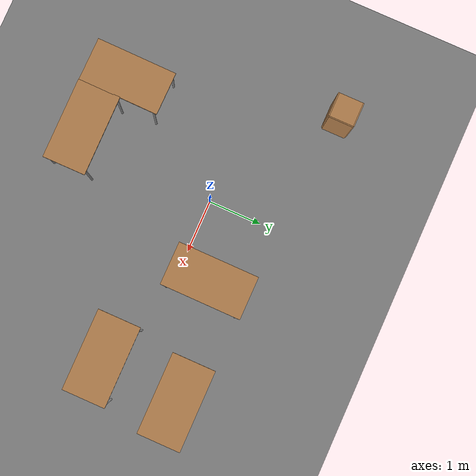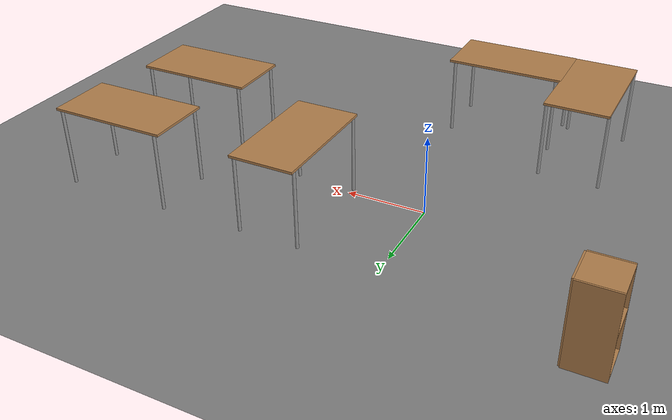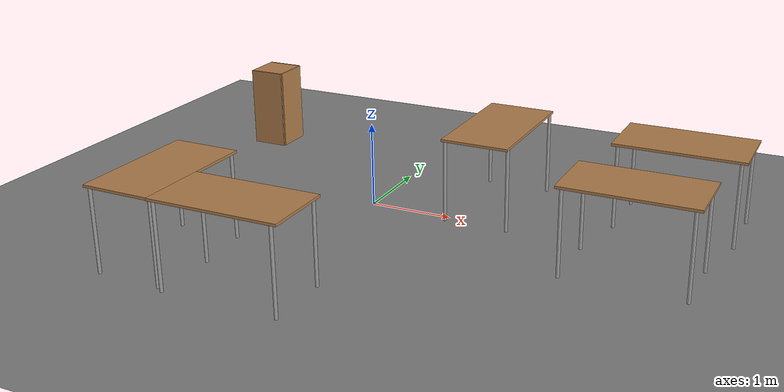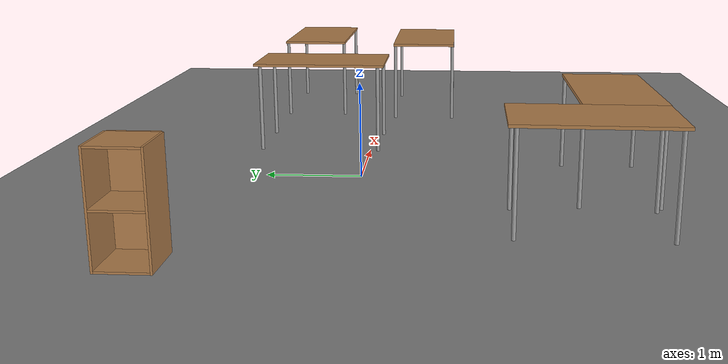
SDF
<sdf version="1.6">
 <world name="default">
  <model name="ground_plane">
   <static>1</static>
   <link name="link">
    <collision name="collision">
     <geometry><plane><normal>0 0 1</normal><size>100 100</size></plane></geometry>
    </collision>
    <visual name="visual">
     <geometry><plane><normal>0 0 1</normal><size>100 100</size></plane></geometry>
     <material>
      <ambient>0.5 0.5 0.5 1</ambient>
      <diffuse>0.5 0.5 0.5 1</diffuse>
      <specular>0.1 0.1 0.1 1</specular>
     </material>
    </visual>
   </link>
  </model>
  <model name="cabinet_2">
   <static>1</static>
   <link name="cabinet_bottom_plate">
    <inertial>
     <pose>0 0 -1 0 -0 0</pose>
     <inertia><ixx>2.05</ixx><ixy>0</ixy><ixz>0</ixz><iyy>2.05</iyy><iyz>0</iyz><izz>2.05</izz></inertia>
     <mass>25</mass>
    </inertial>
    <collision name="cabinet_bottom_plate_geom">
     <pose>0 0 0.01 0 -0 0</pose>
     <geometry><box><size>0.45 0.45 0.02</size></box></geometry>
    </collision>
    <visual name="cabinet_bottom_plate_geom_visual">
     <pose>0 0 0.01 0 -0 0</pose>
     <geometry><box><size>0.45 0.45 0.02</size></box></geometry>
     <material>
      <script><uri>file://media/materials/scripts/gazebo.material</uri><name>Gazebo/Wood</name></script>
     </material>
    </visual>
    <collision name="cabinet_bottom_plate_geom_cabinet_back_plate">
     <pose>0.235 0 0.51 0 -0 0</pose>
     <geometry><box><size>0.02 0.45 1.02</size></box></geometry>
    </collision>
    <visual name="cabinet_bottom_plate_geom_cabinet_back_plate_visual">
     <pose>0.235 0 0.51 0 -0 0</pose>
     <geometry><box><size>0.02 0.45 1.02</size></box></geometry>
     <material>
      <script><uri>file://media/materials/scripts/gazebo.material</uri><name>Gazebo/Wood</name></script>
     </material>
    </visual>
    <collision name="cabinet_bottom_plate_geom_cabinet_left_plate">
     <pose>0 0.235 0.51 0 -0 0</pose>
     <geometry><box><size>0.45 0.02 1.02</size></box></geometry>
    </collision>
    <visual name="cabinet_bottom_plate_geom_cabinet_left_plate_visual">
     <pose>0 0.235 0.51 0 -0 0</pose>
     <geometry><box><size>0.45 0.02 1.02</size></box></geometry>
     <material>
      <script><uri>file://media/materials/scripts/gazebo.material</uri><name>Gazebo/Wood</name></script>
     </material>
    </visual>
    <collision name="cabinet_bottom_plate_geom_cabinet_middle_plate">
     <pose>0 0 0.51 0 -0 0</pose>
     <geometry><box><size>0.45 0.45 0.02</size></box></geometry>
    </collision>
    <visual name="cabinet_bottom_plate_geom_cabinet_middle_plate_visual">
     <pose>0 0 0.51 0 -0 0</pose>
     <geometry><box><size>0.45 0.45 0.02</size></box></geometry>
     <material>
      <script><uri>file://media/materials/scripts/gazebo.material</uri><name>Gazebo/Wood</name></script>
     </material>
    </visual>
    <collision name="cabinet_bottom_plate_geom_cabinet_right_plate">
     <pose>0 -0.235 0.51 0 -0 0</pose>
     <geometry><box><size>0.45 0.02 1.02</size></box></geometry>
    </collision>
    <visual name="cabinet_bottom_plate_geom_cabinet_right_plate_visual">
     <pose>0 -0.235 0.51 0 -0 0</pose>
     <geometry><box><size>0.45 0.02 1.02</size></box></geometry>
     <material>
      <script><uri>file://media/materials/scripts/gazebo.material</uri><name>Gazebo/Wood</name></script>
     </material>
    </visual>
    <collision name="cabinet_bottom_plate_geom_cabinet_top_plate">
     <pose>0 0 1.01 0 -0 0</pose>
     <geometry><box><size>0.45 0.45 0.02</size></box></geometry>
    </collision>
    <visual name="cabinet_bottom_plate_geom_cabinet_top_plate_visual">
     <pose>0 0 1.01 0 -0 0</pose>
     <geometry><box><size>0.45 0.45 0.02</size></box></geometry>
     <material>
      <script><uri>file://media/materials/scripts/gazebo.material</uri><name>Gazebo/Wood</name></script>
     </material>
    </visual>
   </link>
   <pose>-2.33321 1.56229 0 0 -0 0</pose>
  </model>
  <model name="table_1_clone_1">
   <static>1</static>
   <link name="link">
    <collision name="surface">
     <pose>0 0 1 0 -0 0</pose>
     <geometry><box><size>1.5 0.8 0.03</size></box></geometry>
     <surface><friction><ode><mu>0.6</mu><mu2>0.6</mu2></ode></friction></surface>
    </collision>
    <visual name="visual1">
     <pose>0 0 1 0 -0 0</pose>
     <geometry><box><size>1.5 0.8 0.03</size></box></geometry>
     <material>
      <script><uri>file://media/materials/scripts/gazebo.material</uri><name>Gazebo/Wood</name></script>
     </material>
    </visual>
    <collision name="front_left_leg">
     <pose>0.68 0.38 0.5 0 -0 0</pose>
     <geometry><cylinder><radius>0.02</radius><length>1</length></cylinder></geometry>
    </collision>
    <visual name="front_left_leg">
     <pose>0.68 0.38 0.5 0 -0 0</pose>
     <geometry><cylinder><radius>0.02</radius><length>1</length></cylinder></geometry>
     <material>
      <script><uri>file://media/materials/scripts/gazebo.material</uri><name>Gazebo/Grey</name></script>
     </material>
    </visual>
    <collision name="front_right_leg">
     <pose>0.68 -0.38 0.5 0 -0 0</pose>
     <geometry><cylinder><radius>0.02</radius><length>1</length></cylinder></geometry>
    </collision>
    <visual name="front_right_leg">
     <pose>0.68 -0.38 0.5 0 -0 0</pose>
     <geometry><cylinder><radius>0.02</radius><length>1</length></cylinder></geometry>
     <material>
      <script><uri>file://media/materials/scripts/gazebo.material</uri><name>Gazebo/Grey</name></script>
     </material>
    </visual>
    <collision name="back_right_leg">
     <pose>-0.68 -0.38 0.5 0 -0 0</pose>
     <geometry><cylinder><radius>0.02</radius><length>1</length></cylinder></geometry>
    </collision>
    <visual name="back_right_leg">
     <pose>-0.68 -0.38 0.5 0 -0 0</pose>
     <geometry><cylinder><radius>0.02</radius><length>1</length></cylinder></geometry>
     <material>
      <script><uri>file://media/materials/scripts/gazebo.material</uri><name>Gazebo/Grey</name></script>
     </material>
    </visual>
    <collision name="back_left_leg">
     <pose>-0.68 0.38 0.5 0 -0 0</pose>
     <geometry><cylinder><radius>0.02</radius><length>1</length></cylinder></geometry>
    </collision>
    <visual name="back_left_leg">
     <pose>-0.68 0.38 0.5 0 -0 0</pose>
     <geometry><cylinder><radius>0.02</radius><length>1</length></cylinder></geometry>
     <material>
      <script><uri>file://media/materials/scripts/gazebo.material</uri><name>Gazebo/Grey</name></script>
     </material>
    </visual>
   </link>
   <pose>3.32915 -0.557353 0 0 -0 0</pose>
  </model>
  <model name="table_1_clone_2">
   <static>1</static>
   <link name="link">
    <collision name="surface">
     <pose>0 0 1 0 -0 0</pose>
     <geometry><box><size>1.5 0.8 0.03</size></box></geometry>
     <surface><friction><ode><mu>0.6</mu><mu2>0.6</mu2></ode></friction></surface>
    </collision>
    <visual name="visual1">
     <pose>0 0 1 0 -0 0</pose>
     <geometry><box><size>1.5 0.8 0.03</size></box></geometry>
     <material>
      <script><uri>file://media/materials/scripts/gazebo.material</uri><name>Gazebo/Wood</name></script>
     </material>
    </visual>
    <collision name="front_left_leg">
     <pose>0.68 0.38 0.5 0 -0 0</pose>
     <geometry><cylinder><radius>0.02</radius><length>1</length></cylinder></geometry>
    </collision>
    <visual name="front_left_leg">
     <pose>0.68 0.38 0.5 0 -0 0</pose>
     <geometry><cylinder><radius>0.02</radius><length>1</length></cylinder></geometry>
     <material>
      <script><uri>file://media/materials/scripts/gazebo.material</uri><name>Gazebo/Grey</name></script>
     </material>
    </visual>
    <collision name="front_right_leg">
     <pose>0.68 -0.38 0.5 0 -0 0</pose>
     <geometry><cylinder><radius>0.02</radius><length>1</length></cylinder></geometry>
    </collision>
    <visual name="front_right_leg">
     <pose>0.68 -0.38 0.5 0 -0 0</pose>
     <geometry><cylinder><radius>0.02</radius><length>1</length></cylinder></geometry>
     <material>
      <script><uri>file://media/materials/scripts/gazebo.material</uri><name>Gazebo/Grey</name></script>
     </material>
    </visual>
    <collision name="back_right_leg">
     <pose>-0.68 -0.38 0.5 0 -0 0</pose>
     <geometry><cylinder><radius>0.02</radius><length>1</length></cylinder></geometry>
    </collision>
    <visual name="back_right_leg">
     <pose>-0.68 -0.38 0.5 0 -0 0</pose>
     <geometry><cylinder><radius>0.02</radius><length>1</length></cylinder></geometry>
     <material>
      <script><uri>file://media/materials/scripts/gazebo.material</uri><name>Gazebo/Grey</name></script>
     </material>
    </visual>
    <collision name="back_left_leg">
     <pose>-0.68 0.38 0.5 0 -0 0</pose>
     <geometry><cylinder><radius>0.02</radius><length>1</length></cylinder></geometry>
    </collision>
    <visual name="back_left_leg">
     <pose>-0.68 0.38 0.5 0 -0 0</pose>
     <geometry><cylinder><radius>0.02</radius><length>1</length></cylinder></geometry>
     <material>
      <script><uri>file://media/materials/scripts/gazebo.material</uri><name>Gazebo/Grey</name></script>
     </material>
    </visual>
   </link>
   <pose>3.48631 0.913254 0 0 -0 0</pose>
  </model>
  <model name="table_1_clone_4">
   <static>1</static>
   <link name="link">
    <collision name="surface">
     <pose>0 0 1 0 -0 0</pose>
     <geometry><box><size>1.5 0.8 0.03</size></box></geometry>
     <surface><friction><ode><mu>0.6</mu><mu2>0.6</mu2></ode></friction></surface>
    </collision>
    <visual name="visual1">
     <pose>0 0 1 0 -0 0</pose>
     <geometry><box><size>1.5 0.8 0.03</size></box></geometry>
     <material>
      <script><uri>file://media/materials/scripts/gazebo.material</uri><name>Gazebo/Wood</name></script>
     </material>
    </visual>
    <collision name="front_left_leg">
     <pose>0.68 0.38 0.5 0 -0 0</pose>
     <geometry><cylinder><radius>0.02</radius><length>1</length></cylinder></geometry>
    </collision>
    <visual name="front_left_leg">
     <pose>0.68 0.38 0.5 0 -0 0</pose>
     <geometry><cylinder><radius>0.02</radius><length>1</length></cylinder></geometry>
     <material>
      <script><uri>file://media/materials/scripts/gazebo.material</uri><name>Gazebo/Grey</name></script>
     </material>
    </visual>
    <collision name="front_right_leg">
     <pose>0.68 -0.38 0.5 0 -0 0</pose>
     <geometry><cylinder><radius>0.02</radius><length>1</length></cylinder></geometry>
    </collision>
    <visual name="front_right_leg">
     <pose>0.68 -0.38 0.5 0 -0 0</pose>
     <geometry><cylinder><radius>0.02</radius><length>1</length></cylinder></geometry>
     <material>
      <script><uri>file://media/materials/scripts/gazebo.material</uri><name>Gazebo/Grey</name></script>
     </material>
    </visual>
    <collision name="back_right_leg">
     <pose>-0.68 -0.38 0.5 0 -0 0</pose>
     <geometry><cylinder><radius>0.02</radius><length>1</length></cylinder></geometry>
    </collision>
    <visual name="back_right_leg">
     <pose>-0.68 -0.38 0.5 0 -0 0</pose>
     <geometry><cylinder><radius>0.02</radius><length>1</length></cylinder></geometry>
     <material>
      <script><uri>file://media/materials/scripts/gazebo.material</uri><name>Gazebo/Grey</name></script>
     </material>
    </visual>
    <collision name="back_left_leg">
     <pose>-0.68 0.38 0.5 0 -0 0</pose>
     <geometry><cylinder><radius>0.02</radius><length>1</length></cylinder></geometry>
    </collision>
    <visual name="back_left_leg">
     <pose>-0.68 0.38 0.5 0 -0 0</pose>
     <geometry><cylinder><radius>0.02</radius><length>1</length></cylinder></geometry>
     <material>
      <script><uri>file://media/materials/scripts/gazebo.material</uri><name>Gazebo/Grey</name></script>
     </material>
    </visual>
   </link>
   <pose>1.36522 0.589542 0 0 0 -1.57458</pose>
  </model>
  <model name="table_1_clone_5">
   <static>1</static>
   <link name="link">
    <collision name="surface">
     <pose>0 0 1 0 -0 0</pose>
     <geometry><box><size>1.5 0.8 0.03</size></box></geometry>
     <surface><friction><ode><mu>0.6</mu><mu2>0.6</mu2></ode></friction></surface>
    </collision>
    <visual name="visual1">
     <pose>0 0 1 0 -0 0</pose>
     <geometry><box><size>1.5 0.8 0.03</size></box></geometry>
     <material>
      <script><uri>file://media/materials/scripts/gazebo.material</uri><name>Gazebo/Wood</name></script>
     </material>
    </visual>
    <collision name="front_left_leg">
     <pose>0.68 0.38 0.5 0 -0 0</pose>
     <geometry><cylinder><radius>0.02</radius><length>1</length></cylinder></geometry>
    </collision>
    <visual name="front_left_leg">
     <pose>0.68 0.38 0.5 0 -0 0</pose>
     <geometry><cylinder><radius>0.02</radius><length>1</length></cylinder></geometry>
     <material>
      <script><uri>file://media/materials/scripts/gazebo.material</uri><name>Gazebo/Grey</name></script>
     </material>
    </visual>
    <collision name="front_right_leg">
     <pose>0.68 -0.38 0.5 0 -0 0</pose>
     <geometry><cylinder><radius>0.02</radius><length>1</length></cylinder></geometry>
    </collision>
    <visual name="front_right_leg">
     <pose>0.68 -0.38 0.5 0 -0 0</pose>
     <geometry><cylinder><radius>0.02</radius><length>1</length></cylinder></geometry>
     <material>
      <script><uri>file://media/materials/scripts/gazebo.material</uri><name>Gazebo/Grey</name></script>
     </material>
    </visual>
    <collision name="back_right_leg">
     <pose>-0.68 -0.38 0.5 0 -0 0</pose>
     <geometry><cylinder><radius>0.02</radius><length>1</length></cylinder></geometry>
    </collision>
    <visual name="back_right_leg">
     <pose>-0.68 -0.38 0.5 0 -0 0</pose>
     <geometry><cylinder><radius>0.02</radius><length>1</length></cylinder></geometry>
     <material>
      <script><uri>file://media/materials/scripts/gazebo.material</uri><name>Gazebo/Grey</name></script>
     </material>
    </visual>
    <collision name="back_left_leg">
     <pose>-0.68 0.38 0.5 0 -0 0</pose>
     <geometry><cylinder><radius>0.02</radius><length>1</length></cylinder></geometry>
    </collision>
    <visual name="back_left_leg">
     <pose>-0.68 0.38 0.5 0 -0 0</pose>
     <geometry><cylinder><radius>0.02</radius><length>1</length></cylinder></geometry>
     <material>
      <script><uri>file://media/materials/scripts/gazebo.material</uri><name>Gazebo/Grey</name></script>
     </material>
    </visual>
   </link>
   <pose>-0.181981 -2.53365 0 0 -0 0</pose>
  </model>
  <model name="table_1_clone_6">
   <static>1</static>
   <link name="link">
    <collision name="surface">
     <pose>0 0 1 0 -0 0</pose>
     <geometry><box><size>1.5 0.8 0.03</size></box></geometry>
     <surface><friction><ode><mu>0.6</mu><mu2>0.6</mu2></ode></friction></surface>
    </collision>
    <visual name="visual1">
     <pose>0 0 1 0 -0 0</pose>
     <geometry><box><size>1.5 0.8 0.03</size></box></geometry>
     <material>
      <script><uri>file://media/materials/scripts/gazebo.material</uri><name>Gazebo/Wood</name></script>
     </material>
    </visual>
    <collision name="front_left_leg">
     <pose>0.68 0.38 0.5 0 -0 0</pose>
     <geometry><cylinder><radius>0.02</radius><length>1</length></cylinder></geometry>
    </collision>
    <visual name="front_left_leg">
     <pose>0.68 0.38 0.5 0 -0 0</pose>
     <geometry><cylinder><radius>0.02</radius><length>1</length></cylinder></geometry>
     <material>
      <script><uri>file://media/materials/scripts/gazebo.material</uri><name>Gazebo/Grey</name></script>
     </material>
    </visual>
    <collision name="front_right_leg">
     <pose>0.68 -0.38 0.5 0 -0 0</pose>
     <geometry><cylinder><radius>0.02</radius><length>1</length></cylinder></geometry>
    </collision>
    <visual name="front_right_leg">
     <pose>0.68 -0.38 0.5 0 -0 0</pose>
     <geometry><cylinder><radius>0.02</radius><length>1</length></cylinder></geometry>
     <material>
      <script><uri>file://media/materials/scripts/gazebo.material</uri><name>Gazebo/Grey</name></script>
     </material>
    </visual>
    <collision name="back_right_leg">
     <pose>-0.68 -0.38 0.5 0 -0 0</pose>
     <geometry><cylinder><radius>0.02</radius><length>1</length></cylinder></geometry>
    </collision>
    <visual name="back_right_leg">
     <pose>-0.68 -0.38 0.5 0 -0 0</pose>
     <geometry><cylinder><radius>0.02</radius><length>1</length></cylinder></geometry>
     <material>
      <script><uri>file://media/materials/scripts/gazebo.material</uri><name>Gazebo/Grey</name></script>
     </material>
    </visual>
    <collision name="back_left_leg">
     <pose>-0.68 0.38 0.5 0 -0 0</pose>
     <geometry><cylinder><radius>0.02</radius><length>1</length></cylinder></geometry>
    </collision>
    <visual name="back_left_leg">
     <pose>-0.68 0.38 0.5 0 -0 0</pose>
     <geometry><cylinder><radius>0.02</radius><length>1</length></cylinder></geometry>
     <material>
      <script><uri>file://media/materials/scripts/gazebo.material</uri><name>Gazebo/Grey</name></script>
     </material>
    </visual>
   </link>
   <pose>-1.32136 -2.17051 0 0 0 -1.58528</pose>
  </model>
 </world>
</sdf>
